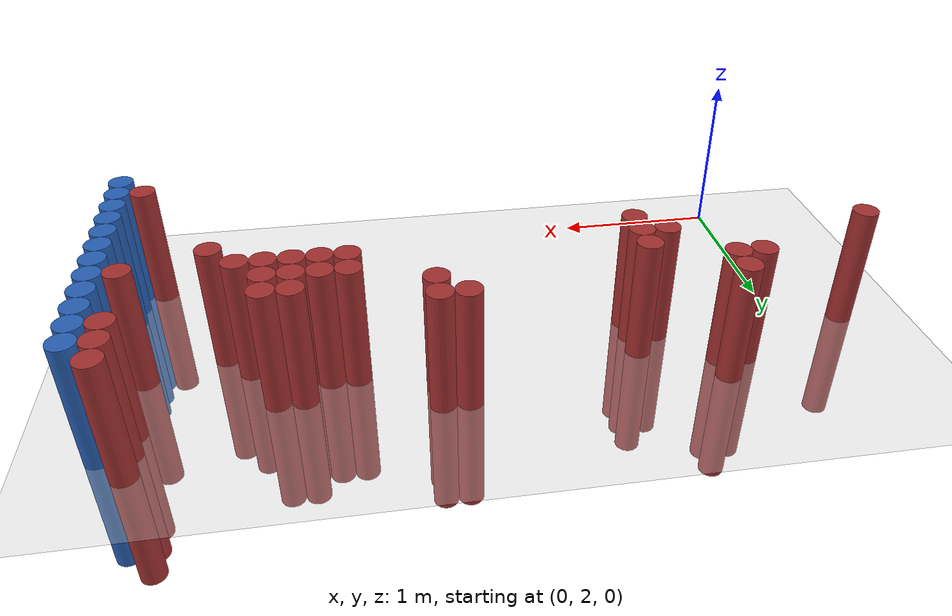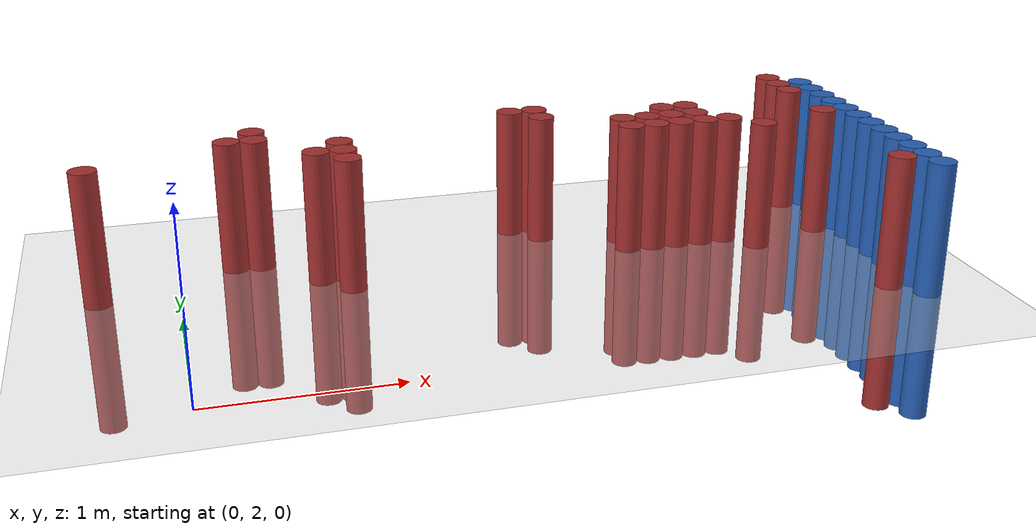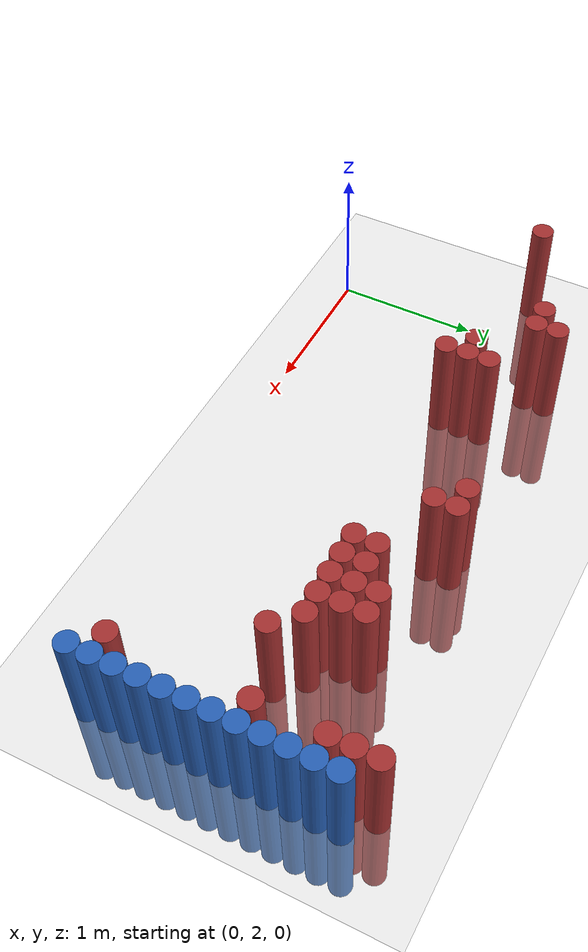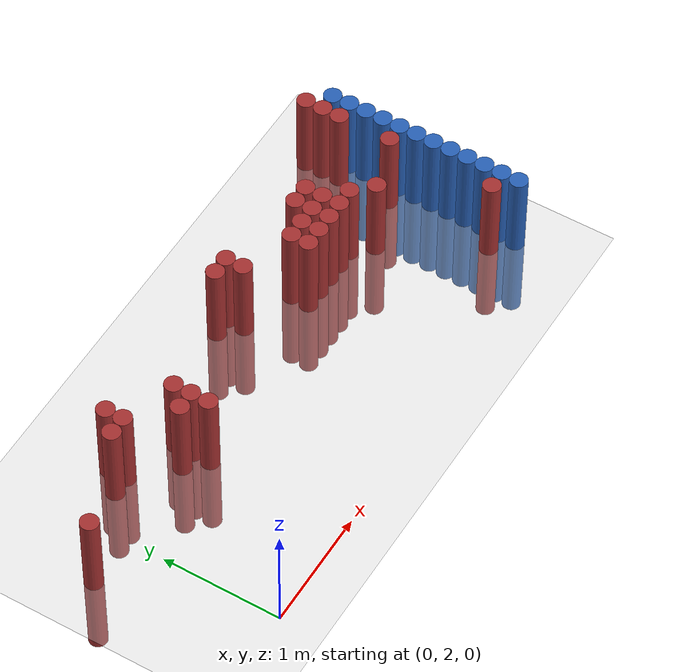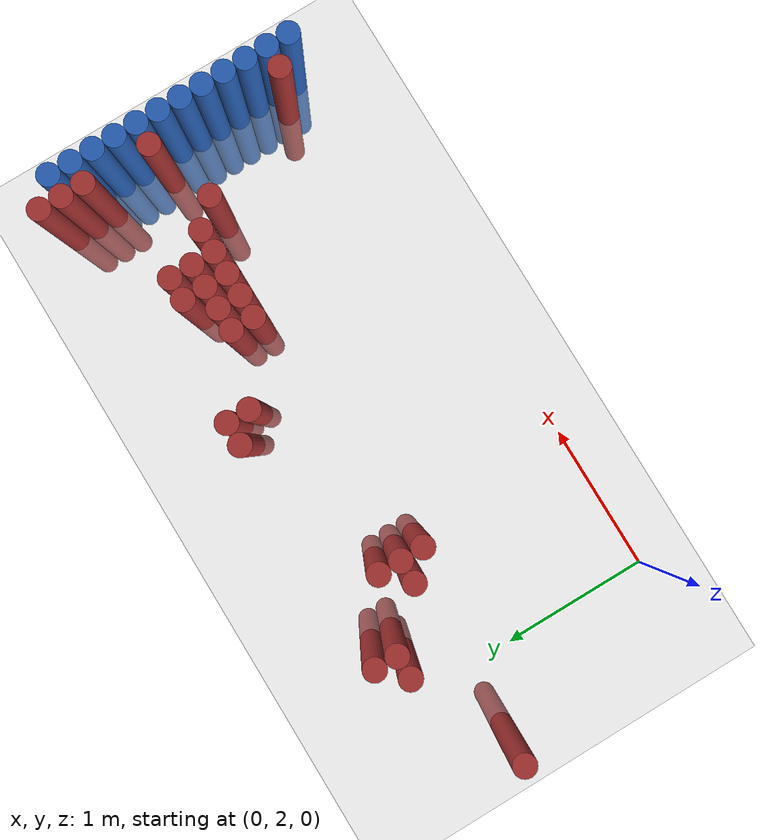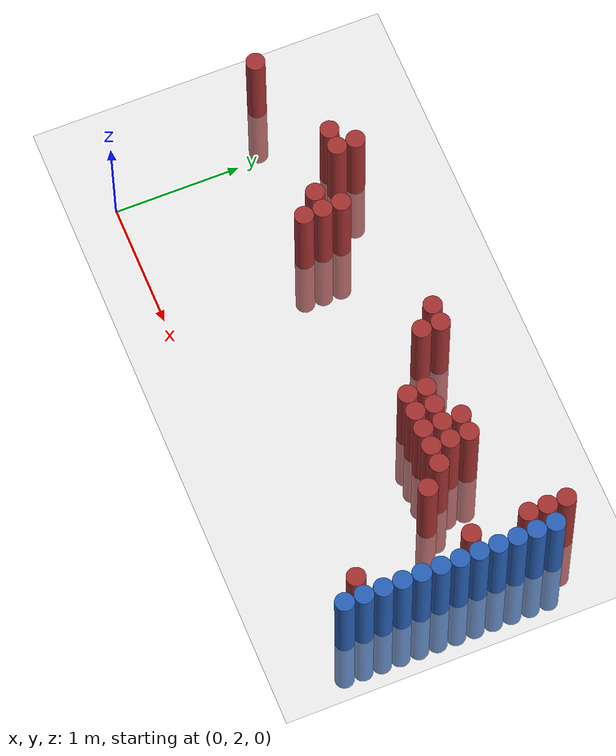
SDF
<sdf version="1.6">
 <world name="default">
  <model name="ground_plane">
   <static>1</static>
   <link name="link">
    <collision name="collision">
     <geometry><plane><normal>0 0 1</normal><size>100 100</size></plane></geometry>
     <surface><friction><ode><mu>100</mu><mu2>50</mu2></ode></friction></surface>
    </collision>
    <visual name="visual">
     <cast_shadows>0</cast_shadows>
     <geometry><plane><normal>0 0 1</normal><size>100 100</size></plane></geometry>
     <material>
      <script><uri>file://media/materials/scripts/gazebo.material</uri><name>Gazebo/Grey</name></script>
     </material>
    </visual>
   </link>
  </model>
  <model name="unit_cylinder_146">
   <static>1</static>
   <pose>3.925000 2.425000 0.000000 0.000000 0.000000 0.000000</pose>
   <link name="link">
    <inertial>
     <mass>1</mass>
     <inertia><ixx>0.145833</ixx><ixy>0</ixy><ixz>0</ixz><iyy>0.145833</iyy><iyz>0</iyz><izz>0.125</izz></inertia>
    </inertial>
    <collision name="collision">
     <geometry><cylinder><radius>0.075000</radius><length>1.5</length></cylinder></geometry>
    </collision>
    <visual name="visual">
     <geometry><cylinder><radius>0.075000</radius><length>1.5</length></cylinder></geometry>
     <material>
      <ambient>0.152000 0.379000 0.720000 1</ambient>
      <diffuse>0.152000 0.379000 0.720000 1</diffuse>
     </material>
     <material>
      <script><name>Gazebo/Grey</name><uri>file://media/materials/scripts/gazebo.material</uri></script>
     </material>
    </visual>
   </link>
  </model>
  <model name="unit_cylinder_148">
   <static>1</static>
   <pose>3.925000 2.575000 0.000000 0.000000 0.000000 0.000000</pose>
   <link name="link">
    <inertial>
     <mass>1</mass>
     <inertia><ixx>0.145833</ixx><ixy>0</ixy><ixz>0</ixz><iyy>0.145833</iyy><iyz>0</iyz><izz>0.125</izz></inertia>
    </inertial>
    <collision name="collision">
     <geometry><cylinder><radius>0.075000</radius><length>1.5</length></cylinder></geometry>
    </collision>
    <visual name="visual">
     <geometry><cylinder><radius>0.075000</radius><length>1.5</length></cylinder></geometry>
     <material>
      <ambient>0.152000 0.379000 0.720000 1</ambient>
      <diffuse>0.152000 0.379000 0.720000 1</diffuse>
     </material>
     <material>
      <script><name>Gazebo/Grey</name><uri>file://media/materials/scripts/gazebo.material</uri></script>
     </material>
    </visual>
   </link>
  </model>
  <model name="unit_cylinder_150">
   <static>1</static>
   <pose>3.925000 2.725000 0.000000 0.000000 0.000000 0.000000</pose>
   <link name="link">
    <inertial>
     <mass>1</mass>
     <inertia><ixx>0.145833</ixx><ixy>0</ixy><ixz>0</ixz><iyy>0.145833</iyy><iyz>0</iyz><izz>0.125</izz></inertia>
    </inertial>
    <collision name="collision">
     <geometry><cylinder><radius>0.075000</radius><length>1.5</length></cylinder></geometry>
    </collision>
    <visual name="visual">
     <geometry><cylinder><radius>0.075000</radius><length>1.5</length></cylinder></geometry>
     <material>
      <ambient>0.152000 0.379000 0.720000 1</ambient>
      <diffuse>0.152000 0.379000 0.720000 1</diffuse>
     </material>
     <material>
      <script><name>Gazebo/Grey</name><uri>file://media/materials/scripts/gazebo.material</uri></script>
     </material>
    </visual>
   </link>
  </model>
  <model name="unit_cylinder_152">
   <static>1</static>
   <pose>3.925000 2.875000 0.000000 0.000000 0.000000 0.000000</pose>
   <link name="link">
    <inertial>
     <mass>1</mass>
     <inertia><ixx>0.145833</ixx><ixy>0</ixy><ixz>0</ixz><iyy>0.145833</iyy><iyz>0</iyz><izz>0.125</izz></inertia>
    </inertial>
    <collision name="collision">
     <geometry><cylinder><radius>0.075000</radius><length>1.5</length></cylinder></geometry>
    </collision>
    <visual name="visual">
     <geometry><cylinder><radius>0.075000</radius><length>1.5</length></cylinder></geometry>
     <material>
      <ambient>0.152000 0.379000 0.720000 1</ambient>
      <diffuse>0.152000 0.379000 0.720000 1</diffuse>
     </material>
     <material>
      <script><name>Gazebo/Grey</name><uri>file://media/materials/scripts/gazebo.material</uri></script>
     </material>
    </visual>
   </link>
  </model>
  <model name="unit_cylinder_154">
   <static>1</static>
   <pose>3.925000 3.025000 0.000000 0.000000 0.000000 0.000000</pose>
   <link name="link">
    <inertial>
     <mass>1</mass>
     <inertia><ixx>0.145833</ixx><ixy>0</ixy><ixz>0</ixz><iyy>0.145833</iyy><iyz>0</iyz><izz>0.125</izz></inertia>
    </inertial>
    <collision name="collision">
     <geometry><cylinder><radius>0.075000</radius><length>1.5</length></cylinder></geometry>
    </collision>
    <visual name="visual">
     <geometry><cylinder><radius>0.075000</radius><length>1.5</length></cylinder></geometry>
     <material>
      <ambient>0.152000 0.379000 0.720000 1</ambient>
      <diffuse>0.152000 0.379000 0.720000 1</diffuse>
     </material>
     <material>
      <script><name>Gazebo/Grey</name><uri>file://media/materials/scripts/gazebo.material</uri></script>
     </material>
    </visual>
   </link>
  </model>
  <model name="unit_cylinder_156">
   <static>1</static>
   <pose>3.925000 3.175000 0.000000 0.000000 0.000000 0.000000</pose>
   <link name="link">
    <inertial>
     <mass>1</mass>
     <inertia><ixx>0.145833</ixx><ixy>0</ixy><ixz>0</ixz><iyy>0.145833</iyy><iyz>0</iyz><izz>0.125</izz></inertia>
    </inertial>
    <collision name="collision">
     <geometry><cylinder><radius>0.075000</radius><length>1.5</length></cylinder></geometry>
    </collision>
    <visual name="visual">
     <geometry><cylinder><radius>0.075000</radius><length>1.5</length></cylinder></geometry>
     <material>
      <ambient>0.152000 0.379000 0.720000 1</ambient>
      <diffuse>0.152000 0.379000 0.720000 1</diffuse>
     </material>
     <material>
      <script><name>Gazebo/Grey</name><uri>file://media/materials/scripts/gazebo.material</uri></script>
     </material>
    </visual>
   </link>
  </model>
  <model name="unit_cylinder_158">
   <static>1</static>
   <pose>3.925000 3.325000 0.000000 0.000000 0.000000 0.000000</pose>
   <link name="link">
    <inertial>
     <mass>1</mass>
     <inertia><ixx>0.145833</ixx><ixy>0</ixy><ixz>0</ixz><iyy>0.145833</iyy><iyz>0</iyz><izz>0.125</izz></inertia>
    </inertial>
    <collision name="collision">
     <geometry><cylinder><radius>0.075000</radius><length>1.5</length></cylinder></geometry>
    </collision>
    <visual name="visual">
     <geometry><cylinder><radius>0.075000</radius><length>1.5</length></cylinder></geometry>
     <material>
      <ambient>0.152000 0.379000 0.720000 1</ambient>
      <diffuse>0.152000 0.379000 0.720000 1</diffuse>
     </material>
     <material>
      <script><name>Gazebo/Grey</name><uri>file://media/materials/scripts/gazebo.material</uri></script>
     </material>
    </visual>
   </link>
  </model>
  <model name="unit_cylinder_160">
   <static>1</static>
   <pose>3.925000 3.475000 0.000000 0.000000 0.000000 0.000000</pose>
   <link name="link">
    <inertial>
     <mass>1</mass>
     <inertia><ixx>0.145833</ixx><ixy>0</ixy><ixz>0</ixz><iyy>0.145833</iyy><iyz>0</iyz><izz>0.125</izz></inertia>
    </inertial>
    <collision name="collision">
     <geometry><cylinder><radius>0.075000</radius><length>1.5</length></cylinder></geometry>
    </collision>
    <visual name="visual">
     <geometry><cylinder><radius>0.075000</radius><length>1.5</length></cylinder></geometry>
     <material>
      <ambient>0.152000 0.379000 0.720000 1</ambient>
      <diffuse>0.152000 0.379000 0.720000 1</diffuse>
     </material>
     <material>
      <script><name>Gazebo/Grey</name><uri>file://media/materials/scripts/gazebo.material</uri></script>
     </material>
    </visual>
   </link>
  </model>
  <model name="unit_cylinder_162">
   <static>1</static>
   <pose>3.925000 3.625000 0.000000 0.000000 0.000000 0.000000</pose>
   <link name="link">
    <inertial>
     <mass>1</mass>
     <inertia><ixx>0.145833</ixx><ixy>0</ixy><ixz>0</ixz><iyy>0.145833</iyy><iyz>0</iyz><izz>0.125</izz></inertia>
    </inertial>
    <collision name="collision">
     <geometry><cylinder><radius>0.075000</radius><length>1.5</length></cylinder></geometry>
    </collision>
    <visual name="visual">
     <geometry><cylinder><radius>0.075000</radius><length>1.5</length></cylinder></geometry>
     <material>
      <ambient>0.152000 0.379000 0.720000 1</ambient>
      <diffuse>0.152000 0.379000 0.720000 1</diffuse>
     </material>
     <material>
      <script><name>Gazebo/Grey</name><uri>file://media/materials/scripts/gazebo.material</uri></script>
     </material>
    </visual>
   </link>
  </model>
  <model name="unit_cylinder_164">
   <static>1</static>
   <pose>3.925000 3.775000 0.000000 0.000000 0.000000 0.000000</pose>
   <link name="link">
    <inertial>
     <mass>1</mass>
     <inertia><ixx>0.145833</ixx><ixy>0</ixy><ixz>0</ixz><iyy>0.145833</iyy><iyz>0</iyz><izz>0.125</izz></inertia>
    </inertial>
    <collision name="collision">
     <geometry><cylinder><radius>0.075000</radius><length>1.5</length></cylinder></geometry>
    </collision>
    <visual name="visual">
     <geometry><cylinder><radius>0.075000</radius><length>1.5</length></cylinder></geometry>
     <material>
      <ambient>0.152000 0.379000 0.720000 1</ambient>
      <diffuse>0.152000 0.379000 0.720000 1</diffuse>
     </material>
     <material>
      <script><name>Gazebo/Grey</name><uri>file://media/materials/scripts/gazebo.material</uri></script>
     </material>
    </visual>
   </link>
  </model>
  <model name="unit_cylinder_166">
   <static>1</static>
   <pose>3.925000 3.925000 0.000000 0.000000 0.000000 0.000000</pose>
   <link name="link">
    <inertial>
     <mass>1</mass>
     <inertia><ixx>0.145833</ixx><ixy>0</ixy><ixz>0</ixz><iyy>0.145833</iyy><iyz>0</iyz><izz>0.125</izz></inertia>
    </inertial>
    <collision name="collision">
     <geometry><cylinder><radius>0.075000</radius><length>1.5</length></cylinder></geometry>
    </collision>
    <visual name="visual">
     <geometry><cylinder><radius>0.075000</radius><length>1.5</length></cylinder></geometry>
     <material>
      <ambient>0.152000 0.379000 0.720000 1</ambient>
      <diffuse>0.152000 0.379000 0.720000 1</diffuse>
     </material>
     <material>
      <script><name>Gazebo/Grey</name><uri>file://media/materials/scripts/gazebo.material</uri></script>
     </material>
    </visual>
   </link>
  </model>
  <model name="unit_cylinder_379">
   <static>1</static>
   <pose>-0.425000 3.325000 0.000000 0.000000 0.000000 0.000000</pose>
   <link name="link">
    <inertial>
     <mass>1</mass>
     <inertia><ixx>0.145833</ixx><ixy>0</ixy><ixz>0</ixz><iyy>0.145833</iyy><iyz>0</iyz><izz>0.125</izz></inertia>
    </inertial>
    <collision name="collision">
     <geometry><cylinder><radius>0.075000</radius><length>1.5</length></cylinder></geometry>
    </collision>
    <visual name="visual">
     <geometry><cylinder><radius>0.075000</radius><length>1.5</length></cylinder></geometry>
     <material>
      <ambient>0.648000 0.192000 0.192000 1</ambient>
      <diffuse>0.648000 0.192000 0.192000 1</diffuse>
     </material>
     <material>
      <script><name>Gazebo/Grey</name><uri>file://media/materials/scripts/gazebo.material</uri></script>
     </material>
    </visual>
   </link>
  </model>
  <model name="unit_cylinder_406">
   <static>1</static>
   <pose>0.325000 3.625000 0.000000 0.000000 0.000000 0.000000</pose>
   <link name="link">
    <inertial>
     <mass>1</mass>
     <inertia><ixx>0.145833</ixx><ixy>0</ixy><ixz>0</ixz><iyy>0.145833</iyy><iyz>0</iyz><izz>0.125</izz></inertia>
    </inertial>
    <collision name="collision">
     <geometry><cylinder><radius>0.075000</radius><length>1.5</length></cylinder></geometry>
    </collision>
    <visual name="visual">
     <geometry><cylinder><radius>0.075000</radius><length>1.5</length></cylinder></geometry>
     <material>
      <ambient>0.648000 0.192000 0.192000 1</ambient>
      <diffuse>0.648000 0.192000 0.192000 1</diffuse>
     </material>
     <material>
      <script><name>Gazebo/Grey</name><uri>file://media/materials/scripts/gazebo.material</uri></script>
     </material>
    </visual>
   </link>
  </model>
  <model name="unit_cylinder_409">
   <static>1</static>
   <pose>0.475000 3.625000 0.000000 0.000000 0.000000 0.000000</pose>
   <link name="link">
    <inertial>
     <mass>1</mass>
     <inertia><ixx>0.145833</ixx><ixy>0</ixy><ixz>0</ixz><iyy>0.145833</iyy><iyz>0</iyz><izz>0.125</izz></inertia>
    </inertial>
    <collision name="collision">
     <geometry><cylinder><radius>0.075000</radius><length>1.5</length></cylinder></geometry>
    </collision>
    <visual name="visual">
     <geometry><cylinder><radius>0.075000</radius><length>1.5</length></cylinder></geometry>
     <material>
      <ambient>0.648000 0.192000 0.192000 1</ambient>
      <diffuse>0.648000 0.192000 0.192000 1</diffuse>
     </material>
     <material>
      <script><name>Gazebo/Grey</name><uri>file://media/materials/scripts/gazebo.material</uri></script>
     </material>
    </visual>
   </link>
  </model>
  <model name="unit_cylinder_410">
   <static>1</static>
   <pose>0.475000 3.775000 0.000000 0.000000 0.000000 0.000000</pose>
   <link name="link">
    <inertial>
     <mass>1</mass>
     <inertia><ixx>0.145833</ixx><ixy>0</ixy><ixz>0</ixz><iyy>0.145833</iyy><iyz>0</iyz><izz>0.125</izz></inertia>
    </inertial>
    <collision name="collision">
     <geometry><cylinder><radius>0.075000</radius><length>1.5</length></cylinder></geometry>
    </collision>
    <visual name="visual">
     <geometry><cylinder><radius>0.075000</radius><length>1.5</length></cylinder></geometry>
     <material>
      <ambient>0.648000 0.192000 0.192000 1</ambient>
      <diffuse>0.648000 0.192000 0.192000 1</diffuse>
     </material>
     <material>
      <script><name>Gazebo/Grey</name><uri>file://media/materials/scripts/gazebo.material</uri></script>
     </material>
    </visual>
   </link>
  </model>
  <model name="unit_cylinder_417">
   <static>1</static>
   <pose>0.775000 3.325000 0.000000 0.000000 0.000000 0.000000</pose>
   <link name="link">
    <inertial>
     <mass>1</mass>
     <inertia><ixx>0.145833</ixx><ixy>0</ixy><ixz>0</ixz><iyy>0.145833</iyy><iyz>0</iyz><izz>0.125</izz></inertia>
    </inertial>
    <collision name="collision">
     <geometry><cylinder><radius>0.075000</radius><length>1.5</length></cylinder></geometry>
    </collision>
    <visual name="visual">
     <geometry><cylinder><radius>0.075000</radius><length>1.5</length></cylinder></geometry>
     <material>
      <ambient>0.648000 0.192000 0.192000 1</ambient>
      <diffuse>0.648000 0.192000 0.192000 1</diffuse>
     </material>
     <material>
      <script><name>Gazebo/Grey</name><uri>file://media/materials/scripts/gazebo.material</uri></script>
     </material>
    </visual>
   </link>
  </model>
  <model name="unit_cylinder_420">
   <static>1</static>
   <pose>0.925000 3.175000 0.000000 0.000000 0.000000 0.000000</pose>
   <link name="link">
    <inertial>
     <mass>1</mass>
     <inertia><ixx>0.145833</ixx><ixy>0</ixy><ixz>0</ixz><iyy>0.145833</iyy><iyz>0</iyz><izz>0.125</izz></inertia>
    </inertial>
    <collision name="collision">
     <geometry><cylinder><radius>0.075000</radius><length>1.5</length></cylinder></geometry>
    </collision>
    <visual name="visual">
     <geometry><cylinder><radius>0.075000</radius><length>1.5</length></cylinder></geometry>
     <material>
      <ambient>0.648000 0.192000 0.192000 1</ambient>
      <diffuse>0.648000 0.192000 0.192000 1</diffuse>
     </material>
     <material>
      <script><name>Gazebo/Grey</name><uri>file://media/materials/scripts/gazebo.material</uri></script>
     </material>
    </visual>
   </link>
  </model>
  <model name="unit_cylinder_421">
   <static>1</static>
   <pose>0.925000 3.325000 0.000000 0.000000 0.000000 0.000000</pose>
   <link name="link">
    <inertial>
     <mass>1</mass>
     <inertia><ixx>0.145833</ixx><ixy>0</ixy><ixz>0</ixz><iyy>0.145833</iyy><iyz>0</iyz><izz>0.125</izz></inertia>
    </inertial>
    <collision name="collision">
     <geometry><cylinder><radius>0.075000</radius><length>1.5</length></cylinder></geometry>
    </collision>
    <visual name="visual">
     <geometry><cylinder><radius>0.075000</radius><length>1.5</length></cylinder></geometry>
     <material>
      <ambient>0.648000 0.192000 0.192000 1</ambient>
      <diffuse>0.648000 0.192000 0.192000 1</diffuse>
     </material>
     <material>
      <script><name>Gazebo/Grey</name><uri>file://media/materials/scripts/gazebo.material</uri></script>
     </material>
    </visual>
   </link>
  </model>
  <model name="unit_cylinder_422">
   <static>1</static>
   <pose>0.925000 3.475000 0.000000 0.000000 0.000000 0.000000</pose>
   <link name="link">
    <inertial>
     <mass>1</mass>
     <inertia><ixx>0.145833</ixx><ixy>0</ixy><ixz>0</ixz><iyy>0.145833</iyy><iyz>0</iyz><izz>0.125</izz></inertia>
    </inertial>
    <collision name="collision">
     <geometry><cylinder><radius>0.075000</radius><length>1.5</length></cylinder></geometry>
    </collision>
    <visual name="visual">
     <geometry><cylinder><radius>0.075000</radius><length>1.5</length></cylinder></geometry>
     <material>
      <ambient>0.648000 0.192000 0.192000 1</ambient>
      <diffuse>0.648000 0.192000 0.192000 1</diffuse>
     </material>
     <material>
      <script><name>Gazebo/Grey</name><uri>file://media/materials/scripts/gazebo.material</uri></script>
     </material>
    </visual>
   </link>
  </model>
  <model name="unit_cylinder_429">
   <static>1</static>
   <pose>1.975000 3.775000 0.000000 0.000000 0.000000 0.000000</pose>
   <link name="link">
    <inertial>
     <mass>1</mass>
     <inertia><ixx>0.145833</ixx><ixy>0</ixy><ixz>0</ixz><iyy>0.145833</iyy><iyz>0</iyz><izz>0.125</izz></inertia>
    </inertial>
    <collision name="collision">
     <geometry><cylinder><radius>0.075000</radius><length>1.5</length></cylinder></geometry>
    </collision>
    <visual name="visual">
     <geometry><cylinder><radius>0.075000</radius><length>1.5</length></cylinder></geometry>
     <material>
      <ambient>0.648000 0.192000 0.192000 1</ambient>
      <diffuse>0.648000 0.192000 0.192000 1</diffuse>
     </material>
     <material>
      <script><name>Gazebo/Grey</name><uri>file://media/materials/scripts/gazebo.material</uri></script>
     </material>
    </visual>
   </link>
  </model>
  <model name="unit_cylinder_431">
   <static>1</static>
   <pose>2.125000 3.625000 0.000000 0.000000 0.000000 0.000000</pose>
   <link name="link">
    <inertial>
     <mass>1</mass>
     <inertia><ixx>0.145833</ixx><ixy>0</ixy><ixz>0</ixz><iyy>0.145833</iyy><iyz>0</iyz><izz>0.125</izz></inertia>
    </inertial>
    <collision name="collision">
     <geometry><cylinder><radius>0.075000</radius><length>1.5</length></cylinder></geometry>
    </collision>
    <visual name="visual">
     <geometry><cylinder><radius>0.075000</radius><length>1.5</length></cylinder></geometry>
     <material>
      <ambient>0.648000 0.192000 0.192000 1</ambient>
      <diffuse>0.648000 0.192000 0.192000 1</diffuse>
     </material>
     <material>
      <script><name>Gazebo/Grey</name><uri>file://media/materials/scripts/gazebo.material</uri></script>
     </material>
    </visual>
   </link>
  </model>
  <model name="unit_cylinder_432">
   <static>1</static>
   <pose>2.125000 3.775000 0.000000 0.000000 0.000000 0.000000</pose>
   <link name="link">
    <inertial>
     <mass>1</mass>
     <inertia><ixx>0.145833</ixx><ixy>0</ixy><ixz>0</ixz><iyy>0.145833</iyy><iyz>0</iyz><izz>0.125</izz></inertia>
    </inertial>
    <collision name="collision">
     <geometry><cylinder><radius>0.075000</radius><length>1.5</length></cylinder></geometry>
    </collision>
    <visual name="visual">
     <geometry><cylinder><radius>0.075000</radius><length>1.5</length></cylinder></geometry>
     <material>
      <ambient>0.648000 0.192000 0.192000 1</ambient>
      <diffuse>0.648000 0.192000 0.192000 1</diffuse>
     </material>
     <material>
      <script><name>Gazebo/Grey</name><uri>file://media/materials/scripts/gazebo.material</uri></script>
     </material>
    </visual>
   </link>
  </model>
  <model name="unit_cylinder_441">
   <static>1</static>
   <pose>2.575000 3.325000 0.000000 0.000000 0.000000 0.000000</pose>
   <link name="link">
    <inertial>
     <mass>1</mass>
     <inertia><ixx>0.145833</ixx><ixy>0</ixy><ixz>0</ixz><iyy>0.145833</iyy><iyz>0</iyz><izz>0.125</izz></inertia>
    </inertial>
    <collision name="collision">
     <geometry><cylinder><radius>0.075000</radius><length>1.5</length></cylinder></geometry>
    </collision>
    <visual name="visual">
     <geometry><cylinder><radius>0.075000</radius><length>1.5</length></cylinder></geometry>
     <material>
      <ambient>0.648000 0.192000 0.192000 1</ambient>
      <diffuse>0.648000 0.192000 0.192000 1</diffuse>
     </material>
     <material>
      <script><name>Gazebo/Grey</name><uri>file://media/materials/scripts/gazebo.material</uri></script>
     </material>
    </visual>
   </link>
  </model>
  <model name="unit_cylinder_442">
   <static>1</static>
   <pose>2.575000 3.475000 0.000000 0.000000 0.000000 0.000000</pose>
   <link name="link">
    <inertial>
     <mass>1</mass>
     <inertia><ixx>0.145833</ixx><ixy>0</ixy><ixz>0</ixz><iyy>0.145833</iyy><iyz>0</iyz><izz>0.125</izz></inertia>
    </inertial>
    <collision name="collision">
     <geometry><cylinder><radius>0.075000</radius><length>1.5</length></cylinder></geometry>
    </collision>
    <visual name="visual">
     <geometry><cylinder><radius>0.075000</radius><length>1.5</length></cylinder></geometry>
     <material>
      <ambient>0.648000 0.192000 0.192000 1</ambient>
      <diffuse>0.648000 0.192000 0.192000 1</diffuse>
     </material>
     <material>
      <script><name>Gazebo/Grey</name><uri>file://media/materials/scripts/gazebo.material</uri></script>
     </material>
    </visual>
   </link>
  </model>
  <model name="unit_cylinder_449">
   <static>1</static>
   <pose>2.725000 3.325000 0.000000 0.000000 0.000000 0.000000</pose>
   <link name="link">
    <inertial>
     <mass>1</mass>
     <inertia><ixx>0.145833</ixx><ixy>0</ixy><ixz>0</ixz><iyy>0.145833</iyy><iyz>0</iyz><izz>0.125</izz></inertia>
    </inertial>
    <collision name="collision">
     <geometry><cylinder><radius>0.075000</radius><length>1.5</length></cylinder></geometry>
    </collision>
    <visual name="visual">
     <geometry><cylinder><radius>0.075000</radius><length>1.5</length></cylinder></geometry>
     <material>
      <ambient>0.648000 0.192000 0.192000 1</ambient>
      <diffuse>0.648000 0.192000 0.192000 1</diffuse>
     </material>
     <material>
      <script><name>Gazebo/Grey</name><uri>file://media/materials/scripts/gazebo.material</uri></script>
     </material>
    </visual>
   </link>
  </model>
  <model name="unit_cylinder_450">
   <static>1</static>
   <pose>2.725000 3.475000 0.000000 0.000000 0.000000 0.000000</pose>
   <link name="link">
    <inertial>
     <mass>1</mass>
     <inertia><ixx>0.145833</ixx><ixy>0</ixy><ixz>0</ixz><iyy>0.145833</iyy><iyz>0</iyz><izz>0.125</izz></inertia>
    </inertial>
    <collision name="collision">
     <geometry><cylinder><radius>0.075000</radius><length>1.5</length></cylinder></geometry>
    </collision>
    <visual name="visual">
     <geometry><cylinder><radius>0.075000</radius><length>1.5</length></cylinder></geometry>
     <material>
      <ambient>0.648000 0.192000 0.192000 1</ambient>
      <diffuse>0.648000 0.192000 0.192000 1</diffuse>
     </material>
     <material>
      <script><name>Gazebo/Grey</name><uri>file://media/materials/scripts/gazebo.material</uri></script>
     </material>
    </visual>
   </link>
  </model>
  <model name="unit_cylinder_456">
   <static>1</static>
   <pose>2.875000 3.325000 0.000000 0.000000 0.000000 0.000000</pose>
   <link name="link">
    <inertial>
     <mass>1</mass>
     <inertia><ixx>0.145833</ixx><ixy>0</ixy><ixz>0</ixz><iyy>0.145833</iyy><iyz>0</iyz><izz>0.125</izz></inertia>
    </inertial>
    <collision name="collision">
     <geometry><cylinder><radius>0.075000</radius><length>1.5</length></cylinder></geometry>
    </collision>
    <visual name="visual">
     <geometry><cylinder><radius>0.075000</radius><length>1.5</length></cylinder></geometry>
     <material>
      <ambient>0.648000 0.192000 0.192000 1</ambient>
      <diffuse>0.648000 0.192000 0.192000 1</diffuse>
     </material>
     <material>
      <script><name>Gazebo/Grey</name><uri>file://media/materials/scripts/gazebo.material</uri></script>
     </material>
    </visual>
   </link>
  </model>
  <model name="unit_cylinder_457">
   <static>1</static>
   <pose>2.875000 3.475000 0.000000 0.000000 0.000000 0.000000</pose>
   <link name="link">
    <inertial>
     <mass>1</mass>
     <inertia><ixx>0.145833</ixx><ixy>0</ixy><ixz>0</ixz><iyy>0.145833</iyy><iyz>0</iyz><izz>0.125</izz></inertia>
    </inertial>
    <collision name="collision">
     <geometry><cylinder><radius>0.075000</radius><length>1.5</length></cylinder></geometry>
    </collision>
    <visual name="visual">
     <geometry><cylinder><radius>0.075000</radius><length>1.5</length></cylinder></geometry>
     <material>
      <ambient>0.648000 0.192000 0.192000 1</ambient>
      <diffuse>0.648000 0.192000 0.192000 1</diffuse>
     </material>
     <material>
      <script><name>Gazebo/Grey</name><uri>file://media/materials/scripts/gazebo.material</uri></script>
     </material>
    </visual>
   </link>
  </model>
  <model name="unit_cylinder_458">
   <static>1</static>
   <pose>2.875000 3.625000 0.000000 0.000000 0.000000 0.000000</pose>
   <link name="link">
    <inertial>
     <mass>1</mass>
     <inertia><ixx>0.145833</ixx><ixy>0</ixy><ixz>0</ixz><iyy>0.145833</iyy><iyz>0</iyz><izz>0.125</izz></inertia>
    </inertial>
    <collision name="collision">
     <geometry><cylinder><radius>0.075000</radius><length>1.5</length></cylinder></geometry>
    </collision>
    <visual name="visual">
     <geometry><cylinder><radius>0.075000</radius><length>1.5</length></cylinder></geometry>
     <material>
      <ambient>0.648000 0.192000 0.192000 1</ambient>
      <diffuse>0.648000 0.192000 0.192000 1</diffuse>
     </material>
     <material>
      <script><name>Gazebo/Grey</name><uri>file://media/materials/scripts/gazebo.material</uri></script>
     </material>
    </visual>
   </link>
  </model>
  <model name="unit_cylinder_461">
   <static>1</static>
   <pose>3.025000 3.325000 0.000000 0.000000 0.000000 0.000000</pose>
   <link name="link">
    <inertial>
     <mass>1</mass>
     <inertia><ixx>0.145833</ixx><ixy>0</ixy><ixz>0</ixz><iyy>0.145833</iyy><iyz>0</iyz><izz>0.125</izz></inertia>
    </inertial>
    <collision name="collision">
     <geometry><cylinder><radius>0.075000</radius><length>1.5</length></cylinder></geometry>
    </collision>
    <visual name="visual">
     <geometry><cylinder><radius>0.075000</radius><length>1.5</length></cylinder></geometry>
     <material>
      <ambient>0.648000 0.192000 0.192000 1</ambient>
      <diffuse>0.648000 0.192000 0.192000 1</diffuse>
     </material>
     <material>
      <script><name>Gazebo/Grey</name><uri>file://media/materials/scripts/gazebo.material</uri></script>
     </material>
    </visual>
   </link>
  </model>
  <model name="unit_cylinder_462">
   <static>1</static>
   <pose>3.025000 3.475000 0.000000 0.000000 0.000000 0.000000</pose>
   <link name="link">
    <inertial>
     <mass>1</mass>
     <inertia><ixx>0.145833</ixx><ixy>0</ixy><ixz>0</ixz><iyy>0.145833</iyy><iyz>0</iyz><izz>0.125</izz></inertia>
    </inertial>
    <collision name="collision">
     <geometry><cylinder><radius>0.075000</radius><length>1.5</length></cylinder></geometry>
    </collision>
    <visual name="visual">
     <geometry><cylinder><radius>0.075000</radius><length>1.5</length></cylinder></geometry>
     <material>
      <ambient>0.648000 0.192000 0.192000 1</ambient>
      <diffuse>0.648000 0.192000 0.192000 1</diffuse>
     </material>
     <material>
      <script><name>Gazebo/Grey</name><uri>file://media/materials/scripts/gazebo.material</uri></script>
     </material>
    </visual>
   </link>
  </model>
  <model name="unit_cylinder_463">
   <static>1</static>
   <pose>3.025000 3.625000 0.000000 0.000000 0.000000 0.000000</pose>
   <link name="link">
    <inertial>
     <mass>1</mass>
     <inertia><ixx>0.145833</ixx><ixy>0</ixy><ixz>0</ixz><iyy>0.145833</iyy><iyz>0</iyz><izz>0.125</izz></inertia>
    </inertial>
    <collision name="collision">
     <geometry><cylinder><radius>0.075000</radius><length>1.5</length></cylinder></geometry>
    </collision>
    <visual name="visual">
     <geometry><cylinder><radius>0.075000</radius><length>1.5</length></cylinder></geometry>
     <material>
      <ambient>0.648000 0.192000 0.192000 1</ambient>
      <diffuse>0.648000 0.192000 0.192000 1</diffuse>
     </material>
     <material>
      <script><name>Gazebo/Grey</name><uri>file://media/materials/scripts/gazebo.material</uri></script>
     </material>
    </visual>
   </link>
  </model>
  <model name="unit_cylinder_466">
   <static>1</static>
   <pose>3.175000 3.325000 0.000000 0.000000 0.000000 0.000000</pose>
   <link name="link">
    <inertial>
     <mass>1</mass>
     <inertia><ixx>0.145833</ixx><ixy>0</ixy><ixz>0</ixz><iyy>0.145833</iyy><iyz>0</iyz><izz>0.125</izz></inertia>
    </inertial>
    <collision name="collision">
     <geometry><cylinder><radius>0.075000</radius><length>1.5</length></cylinder></geometry>
    </collision>
    <visual name="visual">
     <geometry><cylinder><radius>0.075000</radius><length>1.5</length></cylinder></geometry>
     <material>
      <ambient>0.648000 0.192000 0.192000 1</ambient>
      <diffuse>0.648000 0.192000 0.192000 1</diffuse>
     </material>
     <material>
      <script><name>Gazebo/Grey</name><uri>file://media/materials/scripts/gazebo.material</uri></script>
     </material>
    </visual>
   </link>
  </model>
  <model name="unit_cylinder_471">
   <static>1</static>
   <pose>3.325000 3.175000 0.000000 0.000000 0.000000 0.000000</pose>
   <link name="link">
    <inertial>
     <mass>1</mass>
     <inertia><ixx>0.145833</ixx><ixy>0</ixy><ixz>0</ixz><iyy>0.145833</iyy><iyz>0</iyz><izz>0.125</izz></inertia>
    </inertial>
    <collision name="collision">
     <geometry><cylinder><radius>0.075000</radius><length>1.5</length></cylinder></geometry>
    </collision>
    <visual name="visual">
     <geometry><cylinder><radius>0.075000</radius><length>1.5</length></cylinder></geometry>
     <material>
      <ambient>0.648000 0.192000 0.192000 1</ambient>
      <diffuse>0.648000 0.192000 0.192000 1</diffuse>
     </material>
     <material>
      <script><name>Gazebo/Grey</name><uri>file://media/materials/scripts/gazebo.material</uri></script>
     </material>
    </visual>
   </link>
  </model>
  <model name="unit_cylinder_502">
   <static>1</static>
   <pose>3.775000 2.425000 0.000000 0.000000 0.000000 0.000000</pose>
   <link name="link">
    <inertial>
     <mass>1</mass>
     <inertia><ixx>0.145833</ixx><ixy>0</ixy><ixz>0</ixz><iyy>0.145833</iyy><iyz>0</iyz><izz>0.125</izz></inertia>
    </inertial>
    <collision name="collision">
     <geometry><cylinder><radius>0.075000</radius><length>1.5</length></cylinder></geometry>
    </collision>
    <visual name="visual">
     <geometry><cylinder><radius>0.075000</radius><length>1.5</length></cylinder></geometry>
     <material>
      <ambient>0.648000 0.192000 0.192000 1</ambient>
      <diffuse>0.648000 0.192000 0.192000 1</diffuse>
     </material>
     <material>
      <script><name>Gazebo/Grey</name><uri>file://media/materials/scripts/gazebo.material</uri></script>
     </material>
    </visual>
   </link>
  </model>
  <model name="unit_cylinder_503">
   <static>1</static>
   <pose>3.775000 3.325000 0.000000 0.000000 0.000000 0.000000</pose>
   <link name="link">
    <inertial>
     <mass>1</mass>
     <inertia><ixx>0.145833</ixx><ixy>0</ixy><ixz>0</ixz><iyy>0.145833</iyy><iyz>0</iyz><izz>0.125</izz></inertia>
    </inertial>
    <collision name="collision">
     <geometry><cylinder><radius>0.075000</radius><length>1.5</length></cylinder></geometry>
    </collision>
    <visual name="visual">
     <geometry><cylinder><radius>0.075000</radius><length>1.5</length></cylinder></geometry>
     <material>
      <ambient>0.648000 0.192000 0.192000 1</ambient>
      <diffuse>0.648000 0.192000 0.192000 1</diffuse>
     </material>
     <material>
      <script><name>Gazebo/Grey</name><uri>file://media/materials/scripts/gazebo.material</uri></script>
     </material>
    </visual>
   </link>
  </model>
  <model name="unit_cylinder_504">
   <static>1</static>
   <pose>3.775000 3.775000 0.000000 0.000000 0.000000 0.000000</pose>
   <link name="link">
    <inertial>
     <mass>1</mass>
     <inertia><ixx>0.145833</ixx><ixy>0</ixy><ixz>0</ixz><iyy>0.145833</iyy><iyz>0</iyz><izz>0.125</izz></inertia>
    </inertial>
    <collision name="collision">
     <geometry><cylinder><radius>0.075000</radius><length>1.5</length></cylinder></geometry>
    </collision>
    <visual name="visual">
     <geometry><cylinder><radius>0.075000</radius><length>1.5</length></cylinder></geometry>
     <material>
      <ambient>0.648000 0.192000 0.192000 1</ambient>
      <diffuse>0.648000 0.192000 0.192000 1</diffuse>
     </material>
     <material>
      <script><name>Gazebo/Grey</name><uri>file://media/materials/scripts/gazebo.material</uri></script>
     </material>
    </visual>
   </link>
  </model>
  <model name="unit_cylinder_505">
   <static>1</static>
   <pose>3.775000 3.925000 0.000000 0.000000 0.000000 0.000000</pose>
   <link name="link">
    <inertial>
     <mass>1</mass>
     <inertia><ixx>0.145833</ixx><ixy>0</ixy><ixz>0</ixz><iyy>0.145833</iyy><iyz>0</iyz><izz>0.125</izz></inertia>
    </inertial>
    <collision name="collision">
     <geometry><cylinder><radius>0.075000</radius><length>1.5</length></cylinder></geometry>
    </collision>
    <visual name="visual">
     <geometry><cylinder><radius>0.075000</radius><length>1.5</length></cylinder></geometry>
     <material>
      <ambient>0.648000 0.192000 0.192000 1</ambient>
      <diffuse>0.648000 0.192000 0.192000 1</diffuse>
     </material>
     <material>
      <script><name>Gazebo/Grey</name><uri>file://media/materials/scripts/gazebo.material</uri></script>
     </material>
    </visual>
   </link>
  </model>
  <model name="unit_cylinder_506">
   <static>1</static>
   <pose>3.775000 4.075000 0.000000 0.000000 0.000000 0.000000</pose>
   <link name="link">
    <inertial>
     <mass>1</mass>
     <inertia><ixx>0.145833</ixx><ixy>0</ixy><ixz>0</ixz><iyy>0.145833</iyy><iyz>0</iyz><izz>0.125</izz></inertia>
    </inertial>
    <collision name="collision">
     <geometry><cylinder><radius>0.075000</radius><length>1.5</length></cylinder></geometry>
    </collision>
    <visual name="visual">
     <geometry><cylinder><radius>0.075000</radius><length>1.5</length></cylinder></geometry>
     <material>
      <ambient>0.648000 0.192000 0.192000 1</ambient>
      <diffuse>0.648000 0.192000 0.192000 1</diffuse>
     </material>
     <material>
      <script><name>Gazebo/Grey</name><uri>file://media/materials/scripts/gazebo.material</uri></script>
     </material>
    </visual>
   </link>
  </model>
  <model name="unit_cylinder_536">
   <static>1</static>
   <pose>3.925000 2.275000 0.000000 0.000000 0.000000 0.000000</pose>
   <link name="link">
    <inertial>
     <mass>1</mass>
     <inertia><ixx>0.145833</ixx><ixy>0</ixy><ixz>0</ixz><iyy>0.145833</iyy><iyz>0</iyz><izz>0.125</izz></inertia>
    </inertial>
    <collision name="collision">
     <geometry><cylinder><radius>0.075000</radius><length>1.5</length></cylinder></geometry>
    </collision>
    <visual name="visual">
     <geometry><cylinder><radius>0.075000</radius><length>1.5</length></cylinder></geometry>
     <material>
      <ambient>0.152000 0.379000 0.720000 1</ambient>
      <diffuse>0.152000 0.379000 0.720000 1</diffuse>
     </material>
     <material>
      <script><name>Gazebo/Grey</name><uri>file://media/materials/scripts/gazebo.material</uri></script>
     </material>
    </visual>
   </link>
  </model>
  <model name="unit_cylinder_537">
   <static>1</static>
   <pose>3.925000 2.425000 0.000000 0.000000 0.000000 0.000000</pose>
   <link name="link">
    <inertial>
     <mass>1</mass>
     <inertia><ixx>0.145833</ixx><ixy>0</ixy><ixz>0</ixz><iyy>0.145833</iyy><iyz>0</iyz><izz>0.125</izz></inertia>
    </inertial>
    <collision name="collision">
     <geometry><cylinder><radius>0.075000</radius><length>1.5</length></cylinder></geometry>
    </collision>
    <visual name="visual">
     <geometry><cylinder><radius>0.075000</radius><length>1.5</length></cylinder></geometry>
     <material>
      <ambient>0.152000 0.379000 0.720000 1</ambient>
      <diffuse>0.152000 0.379000 0.720000 1</diffuse>
     </material>
     <material>
      <script><name>Gazebo/Grey</name><uri>file://media/materials/scripts/gazebo.material</uri></script>
     </material>
    </visual>
   </link>
  </model>
  <model name="unit_cylinder_538">
   <static>1</static>
   <pose>3.925000 2.575000 0.000000 0.000000 0.000000 0.000000</pose>
   <link name="link">
    <inertial>
     <mass>1</mass>
     <inertia><ixx>0.145833</ixx><ixy>0</ixy><ixz>0</ixz><iyy>0.145833</iyy><iyz>0</iyz><izz>0.125</izz></inertia>
    </inertial>
    <collision name="collision">
     <geometry><cylinder><radius>0.075000</radius><length>1.5</length></cylinder></geometry>
    </collision>
    <visual name="visual">
     <geometry><cylinder><radius>0.075000</radius><length>1.5</length></cylinder></geometry>
     <material>
      <ambient>0.152000 0.379000 0.720000 1</ambient>
      <diffuse>0.152000 0.379000 0.720000 1</diffuse>
     </material>
     <material>
      <script><name>Gazebo/Grey</name><uri>file://media/materials/scripts/gazebo.material</uri></script>
     </material>
    </visual>
   </link>
  </model>
  <model name="unit_cylinder_539">
   <static>1</static>
   <pose>3.925000 2.725000 0.000000 0.000000 0.000000 0.000000</pose>
   <link name="link">
    <inertial>
     <mass>1</mass>
     <inertia><ixx>0.145833</ixx><ixy>0</ixy><ixz>0</ixz><iyy>0.145833</iyy><iyz>0</iyz><izz>0.125</izz></inertia>
    </inertial>
    <collision name="collision">
     <geometry><cylinder><radius>0.075000</radius><length>1.5</length></cylinder></geometry>
    </collision>
    <visual name="visual">
     <geometry><cylinder><radius>0.075000</radius><length>1.5</length></cylinder></geometry>
     <material>
      <ambient>0.152000 0.379000 0.720000 1</ambient>
      <diffuse>0.152000 0.379000 0.720000 1</diffuse>
     </material>
     <material>
      <script><name>Gazebo/Grey</name><uri>file://media/materials/scripts/gazebo.material</uri></script>
     </material>
    </visual>
   </link>
  </model>
  <model name="unit_cylinder_540">
   <static>1</static>
   <pose>3.925000 2.875000 0.000000 0.000000 0.000000 0.000000</pose>
   <link name="link">
    <inertial>
     <mass>1</mass>
     <inertia><ixx>0.145833</ixx><ixy>0</ixy><ixz>0</ixz><iyy>0.145833</iyy><iyz>0</iyz><izz>0.125</izz></inertia>
    </inertial>
    <collision name="collision">
     <geometry><cylinder><radius>0.075000</radius><length>1.5</length></cylinder></geometry>
    </collision>
    <visual name="visual">
     <geometry><cylinder><radius>0.075000</radius><length>1.5</length></cylinder></geometry>
     <material>
      <ambient>0.152000 0.379000 0.720000 1</ambient>
      <diffuse>0.152000 0.379000 0.720000 1</diffuse>
     </material>
     <material>
      <script><name>Gazebo/Grey</name><uri>file://media/materials/scripts/gazebo.material</uri></script>
     </material>
    </visual>
   </link>
  </model>
  <model name="unit_cylinder_541">
   <static>1</static>
   <pose>3.925000 3.025000 0.000000 0.000000 0.000000 0.000000</pose>
   <link name="link">
    <inertial>
     <mass>1</mass>
     <inertia><ixx>0.145833</ixx><ixy>0</ixy><ixz>0</ixz><iyy>0.145833</iyy><iyz>0</iyz><izz>0.125</izz></inertia>
    </inertial>
    <collision name="collision">
     <geometry><cylinder><radius>0.075000</radius><length>1.5</length></cylinder></geometry>
    </collision>
    <visual name="visual">
     <geometry><cylinder><radius>0.075000</radius><length>1.5</length></cylinder></geometry>
     <material>
      <ambient>0.152000 0.379000 0.720000 1</ambient>
      <diffuse>0.152000 0.379000 0.720000 1</diffuse>
     </material>
     <material>
      <script><name>Gazebo/Grey</name><uri>file://media/materials/scripts/gazebo.material</uri></script>
     </material>
    </visual>
   </link>
  </model>
  <model name="unit_cylinder_542">
   <static>1</static>
   <pose>3.925000 3.175000 0.000000 0.000000 0.000000 0.000000</pose>
   <link name="link">
    <inertial>
     <mass>1</mass>
     <inertia><ixx>0.145833</ixx><ixy>0</ixy><ixz>0</ixz><iyy>0.145833</iyy><iyz>0</iyz><izz>0.125</izz></inertia>
    </inertial>
    <collision name="collision">
     <geometry><cylinder><radius>0.075000</radius><length>1.5</length></cylinder></geometry>
    </collision>
    <visual name="visual">
     <geometry><cylinder><radius>0.075000</radius><length>1.5</length></cylinder></geometry>
     <material>
      <ambient>0.152000 0.379000 0.720000 1</ambient>
      <diffuse>0.152000 0.379000 0.720000 1</diffuse>
     </material>
     <material>
      <script><name>Gazebo/Grey</name><uri>file://media/materials/scripts/gazebo.material</uri></script>
     </material>
    </visual>
   </link>
  </model>
  <model name="unit_cylinder_543">
   <static>1</static>
   <pose>3.925000 3.325000 0.000000 0.000000 0.000000 0.000000</pose>
   <link name="link">
    <inertial>
     <mass>1</mass>
     <inertia><ixx>0.145833</ixx><ixy>0</ixy><ixz>0</ixz><iyy>0.145833</iyy><iyz>0</iyz><izz>0.125</izz></inertia>
    </inertial>
    <collision name="collision">
     <geometry><cylinder><radius>0.075000</radius><length>1.5</length></cylinder></geometry>
    </collision>
    <visual name="visual">
     <geometry><cylinder><radius>0.075000</radius><length>1.5</length></cylinder></geometry>
     <material>
      <ambient>0.152000 0.379000 0.720000 1</ambient>
      <diffuse>0.152000 0.379000 0.720000 1</diffuse>
     </material>
     <material>
      <script><name>Gazebo/Grey</name><uri>file://media/materials/scripts/gazebo.material</uri></script>
     </material>
    </visual>
   </link>
  </model>
  <model name="unit_cylinder_544">
   <static>1</static>
   <pose>3.925000 3.475000 0.000000 0.000000 0.000000 0.000000</pose>
   <link name="link">
    <inertial>
     <mass>1</mass>
     <inertia><ixx>0.145833</ixx><ixy>0</ixy><ixz>0</ixz><iyy>0.145833</iyy><iyz>0</iyz><izz>0.125</izz></inertia>
    </inertial>
    <collision name="collision">
     <geometry><cylinder><radius>0.075000</radius><length>1.5</length></cylinder></geometry>
    </collision>
    <visual name="visual">
     <geometry><cylinder><radius>0.075000</radius><length>1.5</length></cylinder></geometry>
     <material>
      <ambient>0.152000 0.379000 0.720000 1</ambient>
      <diffuse>0.152000 0.379000 0.720000 1</diffuse>
     </material>
     <material>
      <script><name>Gazebo/Grey</name><uri>file://media/materials/scripts/gazebo.material</uri></script>
     </material>
    </visual>
   </link>
  </model>
  <model name="unit_cylinder_545">
   <static>1</static>
   <pose>3.925000 3.625000 0.000000 0.000000 0.000000 0.000000</pose>
   <link name="link">
    <inertial>
     <mass>1</mass>
     <inertia><ixx>0.145833</ixx><ixy>0</ixy><ixz>0</ixz><iyy>0.145833</iyy><iyz>0</iyz><izz>0.125</izz></inertia>
    </inertial>
    <collision name="collision">
     <geometry><cylinder><radius>0.075000</radius><length>1.5</length></cylinder></geometry>
    </collision>
    <visual name="visual">
     <geometry><cylinder><radius>0.075000</radius><length>1.5</length></cylinder></geometry>
     <material>
      <ambient>0.152000 0.379000 0.720000 1</ambient>
      <diffuse>0.152000 0.379000 0.720000 1</diffuse>
     </material>
     <material>
      <script><name>Gazebo/Grey</name><uri>file://media/materials/scripts/gazebo.material</uri></script>
     </material>
    </visual>
   </link>
  </model>
  <model name="unit_cylinder_546">
   <static>1</static>
   <pose>3.925000 3.775000 0.000000 0.000000 0.000000 0.000000</pose>
   <link name="link">
    <inertial>
     <mass>1</mass>
     <inertia><ixx>0.145833</ixx><ixy>0</ixy><ixz>0</ixz><iyy>0.145833</iyy><iyz>0</iyz><izz>0.125</izz></inertia>
    </inertial>
    <collision name="collision">
     <geometry><cylinder><radius>0.075000</radius><length>1.5</length></cylinder></geometry>
    </collision>
    <visual name="visual">
     <geometry><cylinder><radius>0.075000</radius><length>1.5</length></cylinder></geometry>
     <material>
      <ambient>0.152000 0.379000 0.720000 1</ambient>
      <diffuse>0.152000 0.379000 0.720000 1</diffuse>
     </material>
     <material>
      <script><name>Gazebo/Grey</name><uri>file://media/materials/scripts/gazebo.material</uri></script>
     </material>
    </visual>
   </link>
  </model>
  <model name="unit_cylinder_547">
   <static>1</static>
   <pose>3.925000 3.925000 0.000000 0.000000 0.000000 0.000000</pose>
   <link name="link">
    <inertial>
     <mass>1</mass>
     <inertia><ixx>0.145833</ixx><ixy>0</ixy><ixz>0</ixz><iyy>0.145833</iyy><iyz>0</iyz><izz>0.125</izz></inertia>
    </inertial>
    <collision name="collision">
     <geometry><cylinder><radius>0.075000</radius><length>1.5</length></cylinder></geometry>
    </collision>
    <visual name="visual">
     <geometry><cylinder><radius>0.075000</radius><length>1.5</length></cylinder></geometry>
     <material>
      <ambient>0.152000 0.379000 0.720000 1</ambient>
      <diffuse>0.152000 0.379000 0.720000 1</diffuse>
     </material>
     <material>
      <script><name>Gazebo/Grey</name><uri>file://media/materials/scripts/gazebo.material</uri></script>
     </material>
    </visual>
   </link>
  </model>
 </world>
</sdf>
